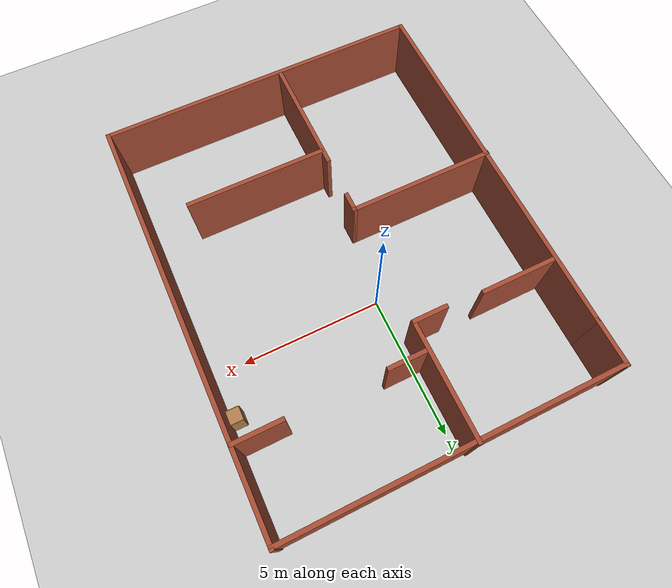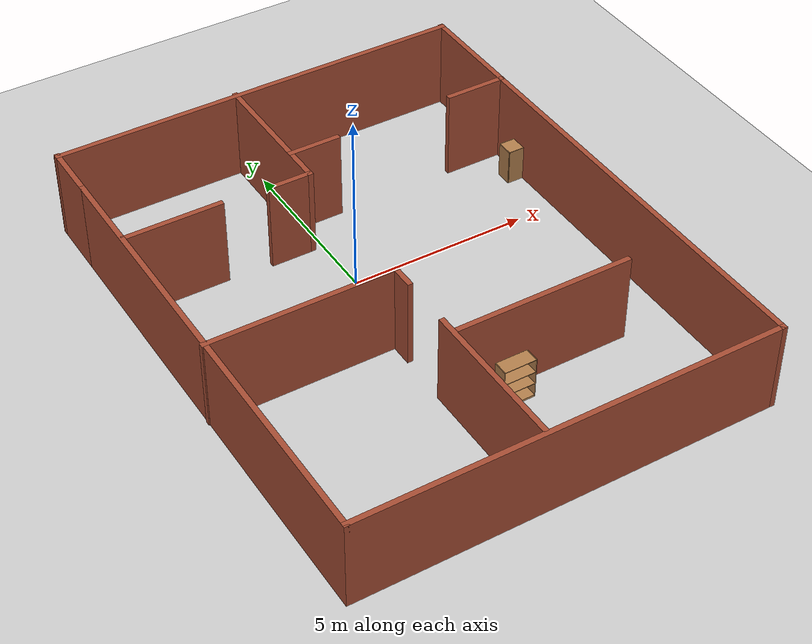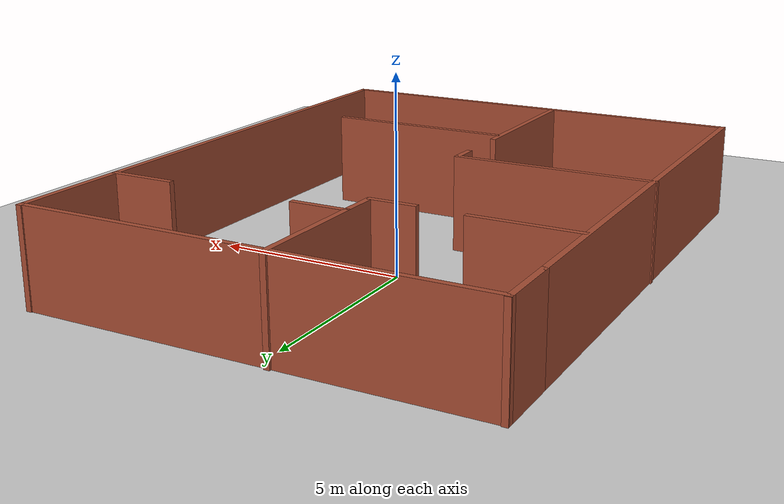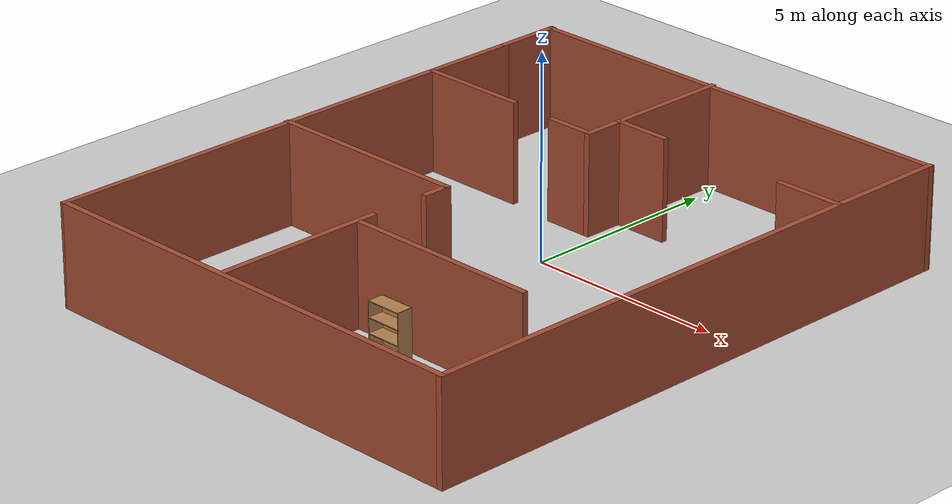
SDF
<sdf version="1.6">
 <world name="default">
  <light name="sun" type="directional">
   <pose>0 0 10 0 -0 0</pose>
   <diffuse>0.8 0.8 0.8 1</diffuse>
   <specular>0.2 0.2 0.2 1</specular>
   <attenuation>
    <range>1000</range>
    <constant>0.9</constant>
    <linear>0.01</linear>
    <quadratic>0.001</quadratic>
   </attenuation>
   <direction>-0.5 0.1 -0.9</direction>
  </light>
  <model name="ground_plane">
   <static>1</static>
   <link name="link">
    <collision name="collision">
     <geometry><plane><normal>0 0 1</normal><size>100 100</size></plane></geometry>
     <surface>
      <contact><collide_bitmask>65535</collide_bitmask></contact>
      <friction><ode><mu>100</mu><mu2>50</mu2></ode></friction>
     </surface>
    </collision>
    <visual name="visual">
     <cast_shadows>0</cast_shadows>
     <geometry><plane><normal>0 0 1</normal><size>100 100</size></plane></geometry>
     <material>
      <script><uri>file://media/materials/scripts/gazebo.material</uri><name>Gazebo/Grey</name></script>
     </material>
    </visual>
   </link>
  </model>
  <gravity>0 0 -9.8</gravity>
  <magnetic_field>6e-06 2.3e-05 -4.2e-05</magnetic_field>
  <atmosphere type="adiabatic"/>
  <physics name="default_physics" default="0" type="ode">
   <max_step_size>0.001</max_step_size>
   <real_time_factor>1</real_time_factor>
   <real_time_update_rate>1000</real_time_update_rate>
  </physics>
  <scene><ambient>0.4 0.4 0.4 1</ambient><background>0.7 0.7 0.7 1</background><shadows>1</shadows></scene>
  <audio><device>default</device></audio>
  <spherical_coordinates>
   <surface_model>EARTH_WGS84</surface_model>
   <latitude_deg>0</latitude_deg>
   <longitude_deg>0</longitude_deg>
   <elevation>0</elevation>
   <heading_deg>0</heading_deg>
  </spherical_coordinates>
  <model name="house">
   <pose>0.357085 -1.56644 0 0 -0 0</pose>
   <link name="Wall_12">
    <collision name="Wall_12_Collision">
     <geometry><box><size>4.15835 0.15 2.5</size></box></geometry>
     <pose>0 0 1.25 0 -0 0</pose>
    </collision>
    <visual name="Wall_12_Visual">
     <pose>0 0 1.25 0 -0 0</pose>
     <geometry><box><size>4.15835 0.15 2.5</size></box></geometry>
     <material>
      <script><uri>file://media/materials/scripts/gazebo.material</uri><name>Gazebo/Bricks</name></script>
      <ambient>1 1 1 1</ambient>
     </material>
     <meta><layer>0</layer></meta>
    </visual>
    <pose>-0.646795 5.34166 0 0 -0 1.5708</pose>
   </link>
   <link name="Wall_15">
    <collision name="Wall_15_Collision">
     <geometry><box><size>1.25 0.15 2.5</size></box></geometry>
     <pose>0 0 1.25 0 -0 0</pose>
    </collision>
    <visual name="Wall_15_Visual">
     <pose>0 0 1.25 0 -0 0</pose>
     <geometry><box><size>1.25 0.15 2.5</size></box></geometry>
     <material>
      <script><uri>file://media/materials/scripts/gazebo.material</uri><name>Gazebo/Bricks</name></script>
      <ambient>1 1 1 1</ambient>
     </material>
     <meta><layer>0</layer></meta>
    </visual>
    <pose>-1.22738 3.33754 0 0 -0 3.14159</pose>
   </link>
   <link name="Wall_18">
    <collision name="Wall_18_Collision">
     <geometry><box><size>5.25 0.15 2.5</size></box></geometry>
     <pose>0 0 1.25 0 -0 0</pose>
    </collision>
    <visual name="Wall_18_Visual">
     <pose>0 0 1.25 0 -0 0</pose>
     <geometry><box><size>5.25 0.15 2.5</size></box></geometry>
     <material>
      <script><uri>file://media/materials/scripts/gazebo.material</uri><name>Gazebo/Bricks</name></script>
      <ambient>1 1 1 1</ambient>
     </material>
     <meta><layer>0</layer></meta>
    </visual>
    <pose>-3.2653 -0.97568 0 0 -0 0</pose>
   </link>
   <link name="Wall_19">
    <collision name="Wall_19_Collision">
     <geometry><box><size>0.75 0.15 2.5</size></box></geometry>
     <pose>0 0 1.25 0 -0 0</pose>
    </collision>
    <visual name="Wall_19_Visual">
     <pose>0 0 1.25 0 -0 0</pose>
     <geometry><box><size>0.75 0.15 2.5</size></box></geometry>
     <material>
      <script><uri>file://media/materials/scripts/gazebo.material</uri><name>Gazebo/Bricks</name></script>
      <ambient>1 1 1 1</ambient>
     </material>
     <meta><layer>0</layer></meta>
    </visual>
    <pose>-0.715296 -1.27568 0 0 -0 -1.5708</pose>
   </link>
   <link name="Wall_22">
    <collision name="Wall_22_Collision">
     <geometry><box><size>4.25 0.15 2.5</size></box></geometry>
     <pose>0 0 1.25 0 -0 0</pose>
    </collision>
    <visual name="Wall_22_Visual">
     <pose>0 0 1.25 0 -0 0</pose>
     <geometry><box><size>4.25 0.15 2.5</size></box></geometry>
     <material>
      <script><uri>file://media/materials/scripts/gazebo.material</uri><name>Gazebo/Bricks</name></script>
      <ambient>1 1 1 1</ambient>
     </material>
     <meta><layer>0</layer></meta>
    </visual>
    <pose>-0.737318 -5.167 0 0 -0 -1.5708</pose>
   </link>
   <link name="Wall_25">
    <collision name="Wall_25_Collision">
     <geometry><box><size>5 0.15 2.5</size></box></geometry>
     <pose>0 0 1.25 0 -0 0</pose>
    </collision>
    <visual name="Wall_25_Visual">
     <pose>0 0 1.25 0 -0 0</pose>
     <geometry><box><size>5 0.15 2.5</size></box></geometry>
     <material>
      <script><uri>file://media/materials/scripts/gazebo.material</uri><name>Gazebo/Bricks</name></script>
      <ambient>1 1 1 1</ambient>
     </material>
     <meta><layer>0</layer></meta>
    </visual>
    <pose>1.77945 -3.54526 0 0 -0 0</pose>
   </link>
   <link name="Wall_29">
    <collision name="Wall_29_Collision">
     <geometry><box><size>1.75 0.15 2.5</size></box></geometry>
     <pose>0 0 1.25 0 -0 0</pose>
    </collision>
    <visual name="Wall_29_Visual">
     <pose>0 0 1.25 0 -0 0</pose>
     <geometry><box><size>1.75 0.15 2.5</size></box></geometry>
     <material>
      <script><uri>file://media/materials/scripts/gazebo.material</uri><name>Gazebo/Bricks</name></script>
      <ambient>1 1 1 1</ambient>
     </material>
     <meta><layer>0</layer></meta>
    </visual>
    <pose>4.98771 4.31643 0 0 -0 0</pose>
   </link>
   <link name="Wall_3">
    <collision name="Wall_3_Collision">
     <geometry><box><size>13.25 0.15 2.5</size></box></geometry>
     <pose>0 0 1.25 0 -0 0</pose>
    </collision>
    <visual name="Wall_3_Visual">
     <pose>0 0 1.25 0 -0 0</pose>
     <geometry><box><size>13.25 0.15 2.5</size></box></geometry>
     <material>
      <script><uri>file://media/materials/scripts/gazebo.material</uri><name>Gazebo/Bricks</name></script>
      <ambient>1 1 1 1</ambient>
     </material>
     <meta><layer>0</layer></meta>
    </visual>
    <pose>-5.7847 -0.79583 0 0 -0 -1.5708</pose>
   </link>
   <link name="Wall_31">
    <collision name="Wall_31_Collision">
     <geometry><box><size>1.5 0.15 2.5</size></box></geometry>
     <pose>0 0 1.25 0 -0 0</pose>
    </collision>
    <visual name="Wall_31_Visual">
     <pose>0 0 1.25 0 -0 0</pose>
     <geometry><box><size>1.5 0.15 2.5</size></box></geometry>
     <material>
      <script><uri>file://media/materials/scripts/gazebo.material</uri><name>Gazebo/Bricks</name></script>
      <ambient>1 1 1 1</ambient>
     </material>
     <meta><layer>0</layer></meta>
    </visual>
    <pose>0.029453 4.31643 0 0 -0 0</pose>
   </link>
   <link name="Wall_4">
    <collision name="Wall_4_Collision">
     <geometry><box><size>11.75 0.15 2.5</size></box></geometry>
     <pose>0 0 1.25 0 -0 0</pose>
    </collision>
    <visual name="Wall_4_Visual">
     <pose>0 0 1.25 0 -0 0</pose>
     <geometry><box><size>11.75 0.15 2.5</size></box></geometry>
     <material>
      <script><uri>file://media/materials/scripts/gazebo.material</uri><name>Gazebo/Bricks</name></script>
      <ambient>1 1 1 1</ambient>
     </material>
     <meta><layer>0</layer></meta>
    </visual>
    <pose>0.015295 -7.34583 0 0 -0 0</pose>
   </link>
   <link name="Wall_5">
    <collision name="Wall_5_Collision">
     <geometry><box><size>14.8154 0.15 2.5</size></box></geometry>
     <pose>0 0 1.25 0 -0 0</pose>
    </collision>
    <visual name="Wall_5_Visual">
     <pose>0 0 1.25 0 -0 0</pose>
     <geometry><box><size>14.8154 0.15 2.5</size></box></geometry>
     <material>
      <script><uri>file://media/materials/scripts/gazebo.material</uri><name>Gazebo/Bricks</name></script>
      <ambient>1 1 1 1</ambient>
     </material>
     <meta><layer>0</layer></meta>
    </visual>
    <pose>5.81529 -0.01314 0 0 -0 1.5708</pose>
   </link>
   <link name="Wall_6">
    <collision name="Wall_6_Collision">
     <geometry><box><size>11.75 0.15 2.5</size></box></geometry>
     <pose>0 0 1.25 0 -0 0</pose>
    </collision>
    <visual name="Wall_6_Visual">
     <pose>0 0 1.25 0 -0 0</pose>
     <geometry><box><size>11.75 0.15 2.5</size></box></geometry>
     <material>
      <script><uri>file://media/materials/scripts/gazebo.material</uri><name>Gazebo/Bricks</name></script>
      <ambient>1 1 1 1</ambient>
     </material>
     <meta><layer>0</layer></meta>
    </visual>
    <pose>0.015295 7.28896 0 0 -0 3.14159</pose>
   </link>
   <link name="Wall_7">
    <collision name="Wall_7_Collision">
     <geometry><box><size>1.71538 0.15 2.5</size></box></geometry>
     <pose>0 0 1.25 0 -0 0</pose>
    </collision>
    <visual name="Wall_7_Visual">
     <pose>0 0 1.25 0 -0 0</pose>
     <geometry><box><size>1.71538 0.15 2.5</size></box></geometry>
     <material>
      <script><uri>file://media/materials/scripts/gazebo.material</uri><name>Gazebo/Bricks</name></script>
      <ambient>1 1 1 1</ambient>
     </material>
     <meta><layer>0</layer></meta>
    </visual>
    <pose>-5.7847 6.53686 0 0 -0 -1.5708</pose>
   </link>
   <link name="Wall_9">
    <collision name="Wall_9_Collision">
     <geometry><box><size>2.75 0.15 2.5</size></box></geometry>
     <pose>0 0 1.25 0 -0 0</pose>
    </collision>
    <visual name="Wall_9_Visual">
     <pose>0 0 1.25 0 -0 0</pose>
     <geometry><box><size>2.75 0.15 2.5</size></box></geometry>
     <material>
      <script><uri>file://media/materials/scripts/gazebo.material</uri><name>Gazebo/Bricks</name></script>
      <ambient>1 1 1 1</ambient>
     </material>
     <meta><layer>0</layer></meta>
    </visual>
    <pose>-4.42352 3.42931 0 0 -0 0</pose>
   </link>
   <static>1</static>
  </model>
  <model name="bookshelf">
   <static>1</static>
   <link name="link">
    <inertial><mass>1</mass></inertial>
    <collision name="back">
     <pose>0 0.005 0.6 0 -0 0</pose>
     <geometry><box><size>0.9 0.01 1.2</size></box></geometry>
    </collision>
    <visual name="visual1">
     <pose>0 0.005 0.6 0 -0 0</pose>
     <geometry><box><size>0.9 0.01 1.2</size></box></geometry>
     <material>
      <script><uri>file://media/materials/scripts/gazebo.material</uri><name>Gazebo/Wood</name></script>
     </material>
    </visual>
    <collision name="left_side">
     <pose>0.45 -0.195 0.6 0 -0 0</pose>
     <geometry><box><size>0.02 0.4 1.2</size></box></geometry>
    </collision>
    <visual name="visual2">
     <pose>0.45 -0.195 0.6 0 -0 0</pose>
     <geometry><box><size>0.02 0.4 1.2</size></box></geometry>
     <material>
      <script><uri>file://media/materials/scripts/gazebo.material</uri><name>Gazebo/Wood</name></script>
     </material>
    </visual>
    <collision name="right_side">
     <pose>-0.45 -0.195 0.6 0 -0 0</pose>
     <geometry><box><size>0.02 0.4 1.2</size></box></geometry>
    </collision>
    <visual name="visual3">
     <pose>-0.45 -0.195 0.6 0 -0 0</pose>
     <geometry><box><size>0.02 0.4 1.2</size></box></geometry>
     <material>
      <script><uri>file://media/materials/scripts/gazebo.material</uri><name>Gazebo/Wood</name></script>
     </material>
    </visual>
    <collision name="bottom">
     <pose>0 -0.195 0.03 0 -0 0</pose>
     <geometry><box><size>0.88 0.4 0.06</size></box></geometry>
    </collision>
    <visual name="visual4">
     <pose>0 -0.195 0.03 0 -0 0</pose>
     <geometry><box><size>0.88 0.4 0.06</size></box></geometry>
     <material>
      <script><uri>file://media/materials/scripts/gazebo.material</uri><name>Gazebo/Wood</name></script>
     </material>
    </visual>
    <collision name="top">
     <pose>0 -0.195 1.19 0 -0 0</pose>
     <geometry><box><size>0.88 0.4 0.02</size></box></geometry>
    </collision>
    <visual name="visual5">
     <pose>0 -0.195 1.19 0 -0 0</pose>
     <geometry><box><size>0.88 0.4 0.02</size></box></geometry>
     <material>
      <script><uri>file://media/materials/scripts/gazebo.material</uri><name>Gazebo/Wood</name></script>
     </material>
    </visual>
    <collision name="low_shelf">
     <pose>0 -0.195 0.43 0 -0 0</pose>
     <geometry><box><size>0.88 0.4 0.02</size></box></geometry>
    </collision>
    <visual name="visual6">
     <pose>0 -0.195 0.43 0 -0 0</pose>
     <geometry><box><size>0.88 0.4 0.02</size></box></geometry>
     <material>
      <script><uri>file://media/materials/scripts/gazebo.material</uri><name>Gazebo/Wood</name></script>
     </material>
    </visual>
    <collision name="high_shelf">
     <pose>0 -0.195 0.8 0 -0 0</pose>
     <geometry><box><size>0.88 0.4 0.02</size></box></geometry>
    </collision>
    <visual name="visual7">
     <pose>0 -0.195 0.8 0 -0 0</pose>
     <geometry><box><size>0.88 0.4 0.02</size></box></geometry>
     <material>
      <script><uri>file://media/materials/scripts/gazebo.material</uri><name>Gazebo/Wood</name></script>
     </material>
    </visual>
   </link>
   <pose>1.1036 -5.38668 0 0 -0 0</pose>
  </model>
  <model name="cabinet">
   <static>1</static>
   <link name="cabinet_bottom_plate">
    <inertial>
     <pose>0 0 -1 0 -0 0</pose>
     <inertia><ixx>2.05</ixx><ixy>0</ixy><ixz>0</ixz><iyy>2.05</iyy><iyz>0</iyz><izz>2.05</izz></inertia>
     <mass>25</mass>
    </inertial>
    <collision name="cabinet_bottom_plate_geom">
     <pose>0 0 0.01 0 -0 0</pose>
     <geometry><box><size>0.45 0.45 0.02</size></box></geometry>
    </collision>
    <visual name="cabinet_bottom_plate_geom_visual">
     <pose>0 0 0.01 0 -0 0</pose>
     <geometry><box><size>0.45 0.45 0.02</size></box></geometry>
     <material>
      <script><uri>file://media/materials/scripts/gazebo.material</uri><name>Gazebo/Wood</name></script>
     </material>
    </visual>
    <collision name="cabinet_bottom_plate_geom_cabinet_back_plate">
     <pose>0.235 0 0.51 0 -0 0</pose>
     <geometry><box><size>0.02 0.45 1.02</size></box></geometry>
    </collision>
    <visual name="cabinet_bottom_plate_geom_cabinet_back_plate_visual">
     <pose>0.235 0 0.51 0 -0 0</pose>
     <geometry><box><size>0.02 0.45 1.02</size></box></geometry>
     <material>
      <script><uri>file://media/materials/scripts/gazebo.material</uri><name>Gazebo/Wood</name></script>
     </material>
    </visual>
    <collision name="cabinet_bottom_plate_geom_cabinet_left_plate">
     <pose>0 0.235 0.51 0 -0 0</pose>
     <geometry><box><size>0.45 0.02 1.02</size></box></geometry>
    </collision>
    <visual name="cabinet_bottom_plate_geom_cabinet_left_plate_visual">
     <pose>0 0.235 0.51 0 -0 0</pose>
     <geometry><box><size>0.45 0.02 1.02</size></box></geometry>
     <material>
      <script><uri>file://media/materials/scripts/gazebo.material</uri><name>Gazebo/Wood</name></script>
     </material>
    </visual>
    <collision name="cabinet_bottom_plate_geom_cabinet_middle_plate">
     <pose>0 0 0.51 0 -0 0</pose>
     <geometry><box><size>0.45 0.45 0.02</size></box></geometry>
    </collision>
    <visual name="cabinet_bottom_plate_geom_cabinet_middle_plate_visual">
     <pose>0 0 0.51 0 -0 0</pose>
     <geometry><box><size>0.45 0.45 0.02</size></box></geometry>
     <material>
      <script><uri>file://media/materials/scripts/gazebo.material</uri><name>Gazebo/Wood</name></script>
     </material>
    </visual>
    <collision name="cabinet_bottom_plate_geom_cabinet_right_plate">
     <pose>0 -0.235 0.51 0 -0 0</pose>
     <geometry><box><size>0.45 0.02 1.02</size></box></geometry>
    </collision>
    <visual name="cabinet_bottom_plate_geom_cabinet_right_plate_visual">
     <pose>0 -0.235 0.51 0 -0 0</pose>
     <geometry><box><size>0.45 0.02 1.02</size></box></geometry>
     <material>
      <script><uri>file://media/materials/scripts/gazebo.material</uri><name>Gazebo/Wood</name></script>
     </material>
    </visual>
    <collision name="cabinet_bottom_plate_geom_cabinet_top_plate">
     <pose>0 0 1.01 0 -0 0</pose>
     <geometry><box><size>0.45 0.45 0.02</size></box></geometry>
    </collision>
    <visual name="cabinet_bottom_plate_geom_cabinet_top_plate_visual">
     <pose>0 0 1.01 0 -0 0</pose>
     <geometry><box><size>0.45 0.45 0.02</size></box></geometry>
     <material>
      <script><uri>file://media/materials/scripts/gazebo.material</uri><name>Gazebo/Wood</name></script>
     </material>
    </visual>
   </link>
   <pose>5.87785 1.69401 0 0 -0 3.13376</pose>
  </model>
 </world>
</sdf>
